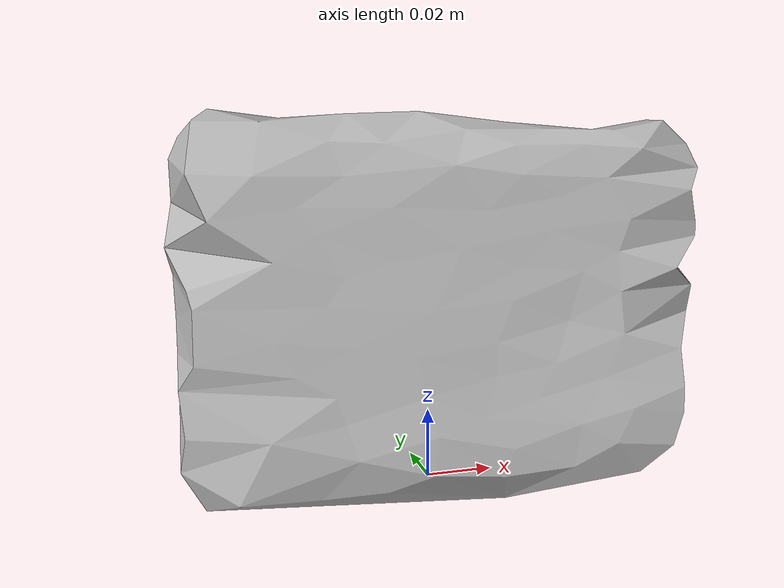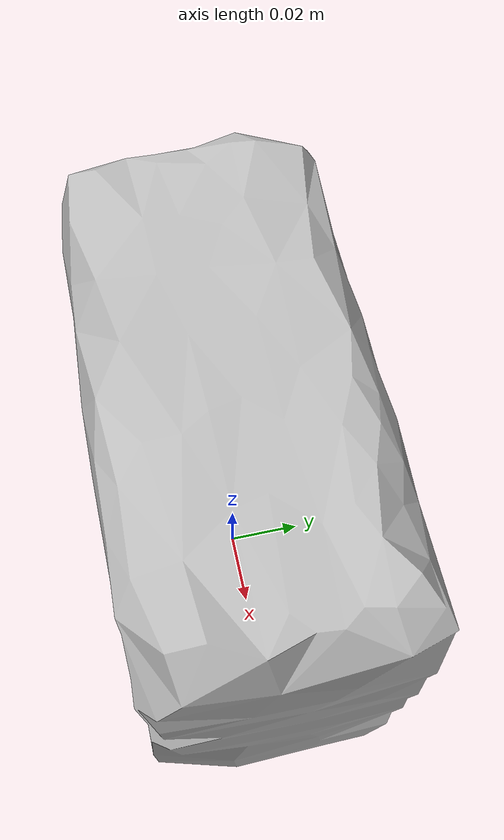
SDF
<?xml version="1.0" ?>
<sdf version="1.4">
  <model name="soap">
    <link name="soap_link">
      <inertial>
        <pose>0 0 0 0 0 0</pose>
        <mass>0.08</mass>
      </inertial>

      <visual name="soap_visual">
        <pose>0 0 0 0 0 0</pose>
        <material>
          <script>
            <uri>model://soap/materials/scripts</uri>
            <uri>model://soap/materials/textures</uri>
            <name>soap</name>
          </script>
        </material>
        <geometry>
          <mesh>
            <uri>model://soap/meshes/soap_aligned.dae</uri>
          </mesh>
        </geometry>
      </visual>

      <collision name="soap_collision">
        <pose>0.0 0.0 0.05 0 0 0</pose>
        <geometry>
          <box>
            <size>0.14 0.065 0.1</size>
          </box>
        </geometry>
      </collision>

    </link>
  </model>
</sdf>
